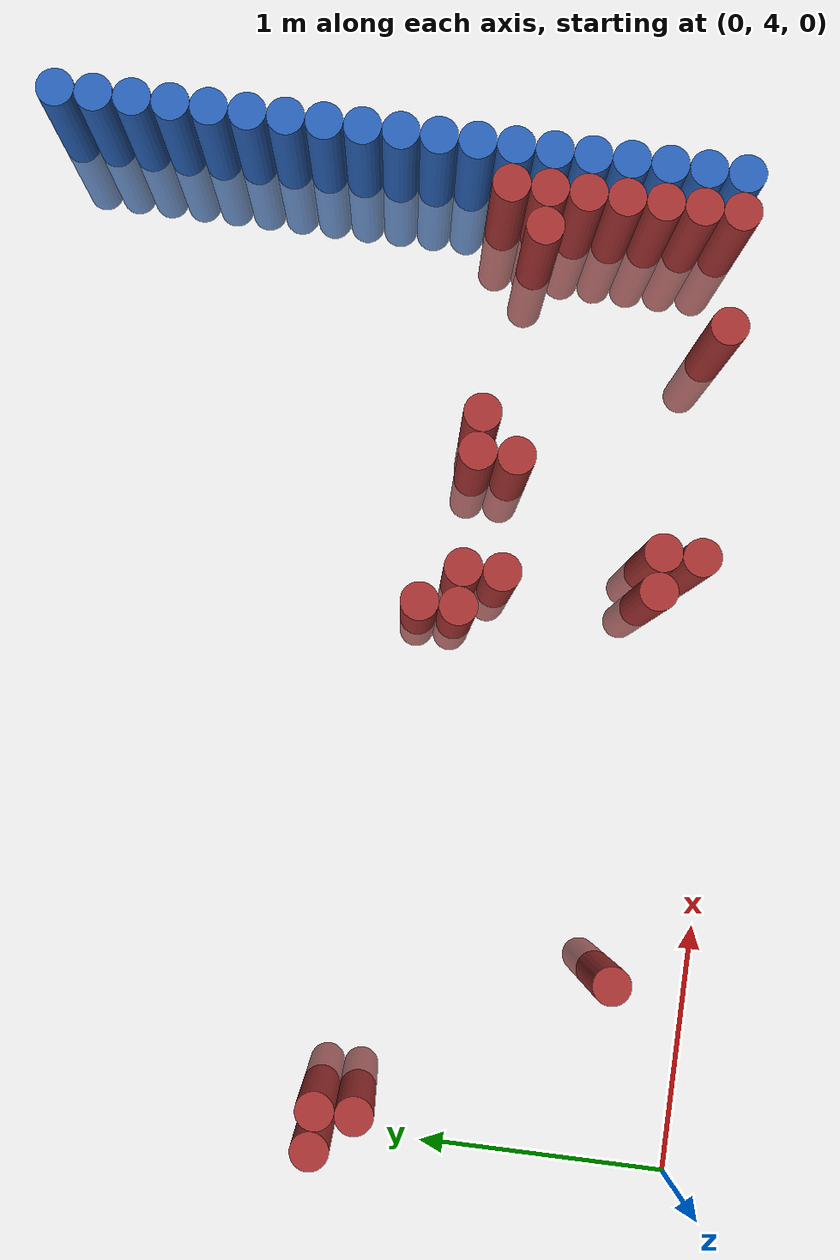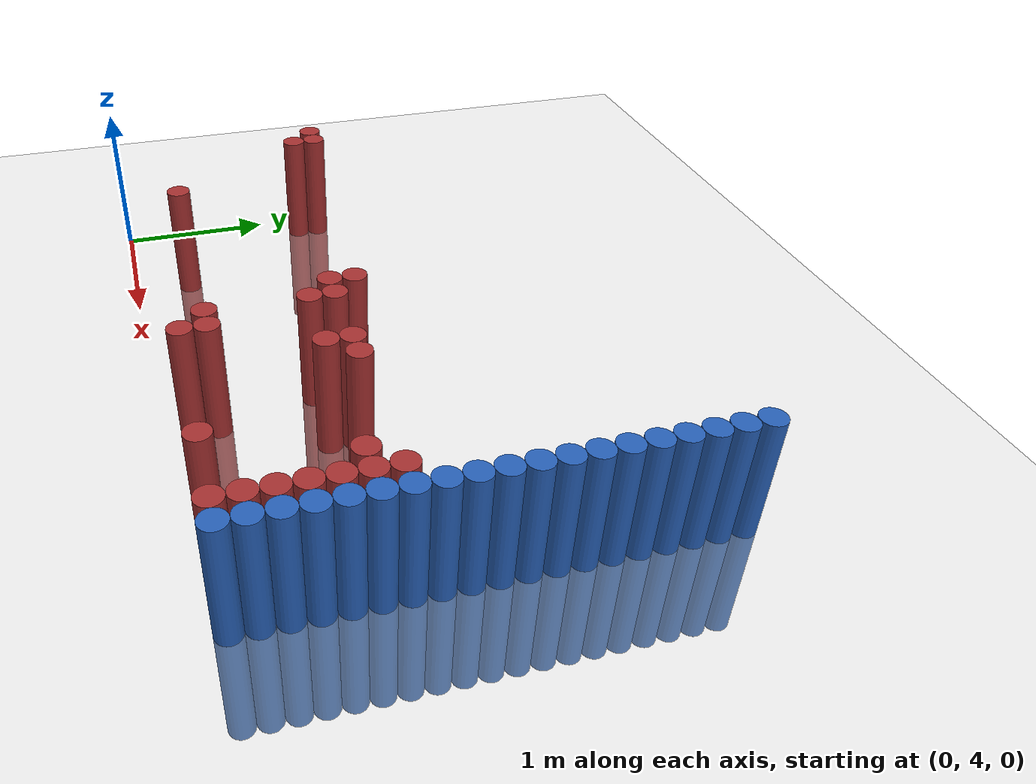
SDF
<sdf version="1.6">
 <world name="default">
  <model name="ground_plane">
   <static>1</static>
   <link name="link">
    <collision name="collision">
     <geometry><plane><normal>0 0 1</normal><size>100 100</size></plane></geometry>
     <surface><friction><ode><mu>100</mu><mu2>50</mu2></ode></friction></surface>
    </collision>
    <visual name="visual">
     <cast_shadows>0</cast_shadows>
     <geometry><plane><normal>0 0 1</normal><size>100 100</size></plane></geometry>
     <material>
      <script><uri>file://media/materials/scripts/gazebo.material</uri><name>Gazebo/Grey</name></script>
     </material>
    </visual>
   </link>
  </model>
  <model name="unit_cylinder_170">
   <static>1</static>
   <pose>3.925000 4.225000 0.000000 0.000000 0.000000 0.000000</pose>
   <link name="link">
    <inertial>
     <mass>1</mass>
     <inertia><ixx>0.145833</ixx><ixy>0</ixy><ixz>0</ixz><iyy>0.145833</iyy><iyz>0</iyz><izz>0.125</izz></inertia>
    </inertial>
    <collision name="collision">
     <geometry><cylinder><radius>0.075000</radius><length>1.5</length></cylinder></geometry>
    </collision>
    <visual name="visual">
     <geometry><cylinder><radius>0.075000</radius><length>1.5</length></cylinder></geometry>
     <material>
      <ambient>0.152000 0.379000 0.720000 1</ambient>
      <diffuse>0.152000 0.379000 0.720000 1</diffuse>
     </material>
     <material>
      <script><name>Gazebo/Grey</name><uri>file://media/materials/scripts/gazebo.material</uri></script>
     </material>
    </visual>
   </link>
  </model>
  <model name="unit_cylinder_172">
   <static>1</static>
   <pose>3.925000 4.375000 0.000000 0.000000 0.000000 0.000000</pose>
   <link name="link">
    <inertial>
     <mass>1</mass>
     <inertia><ixx>0.145833</ixx><ixy>0</ixy><ixz>0</ixz><iyy>0.145833</iyy><iyz>0</iyz><izz>0.125</izz></inertia>
    </inertial>
    <collision name="collision">
     <geometry><cylinder><radius>0.075000</radius><length>1.5</length></cylinder></geometry>
    </collision>
    <visual name="visual">
     <geometry><cylinder><radius>0.075000</radius><length>1.5</length></cylinder></geometry>
     <material>
      <ambient>0.152000 0.379000 0.720000 1</ambient>
      <diffuse>0.152000 0.379000 0.720000 1</diffuse>
     </material>
     <material>
      <script><name>Gazebo/Grey</name><uri>file://media/materials/scripts/gazebo.material</uri></script>
     </material>
    </visual>
   </link>
  </model>
  <model name="unit_cylinder_174">
   <static>1</static>
   <pose>3.925000 4.525000 0.000000 0.000000 0.000000 0.000000</pose>
   <link name="link">
    <inertial>
     <mass>1</mass>
     <inertia><ixx>0.145833</ixx><ixy>0</ixy><ixz>0</ixz><iyy>0.145833</iyy><iyz>0</iyz><izz>0.125</izz></inertia>
    </inertial>
    <collision name="collision">
     <geometry><cylinder><radius>0.075000</radius><length>1.5</length></cylinder></geometry>
    </collision>
    <visual name="visual">
     <geometry><cylinder><radius>0.075000</radius><length>1.5</length></cylinder></geometry>
     <material>
      <ambient>0.152000 0.379000 0.720000 1</ambient>
      <diffuse>0.152000 0.379000 0.720000 1</diffuse>
     </material>
     <material>
      <script><name>Gazebo/Grey</name><uri>file://media/materials/scripts/gazebo.material</uri></script>
     </material>
    </visual>
   </link>
  </model>
  <model name="unit_cylinder_176">
   <static>1</static>
   <pose>3.925000 4.675000 0.000000 0.000000 0.000000 0.000000</pose>
   <link name="link">
    <inertial>
     <mass>1</mass>
     <inertia><ixx>0.145833</ixx><ixy>0</ixy><ixz>0</ixz><iyy>0.145833</iyy><iyz>0</iyz><izz>0.125</izz></inertia>
    </inertial>
    <collision name="collision">
     <geometry><cylinder><radius>0.075000</radius><length>1.5</length></cylinder></geometry>
    </collision>
    <visual name="visual">
     <geometry><cylinder><radius>0.075000</radius><length>1.5</length></cylinder></geometry>
     <material>
      <ambient>0.152000 0.379000 0.720000 1</ambient>
      <diffuse>0.152000 0.379000 0.720000 1</diffuse>
     </material>
     <material>
      <script><name>Gazebo/Grey</name><uri>file://media/materials/scripts/gazebo.material</uri></script>
     </material>
    </visual>
   </link>
  </model>
  <model name="unit_cylinder_178">
   <static>1</static>
   <pose>3.925000 4.825000 0.000000 0.000000 0.000000 0.000000</pose>
   <link name="link">
    <inertial>
     <mass>1</mass>
     <inertia><ixx>0.145833</ixx><ixy>0</ixy><ixz>0</ixz><iyy>0.145833</iyy><iyz>0</iyz><izz>0.125</izz></inertia>
    </inertial>
    <collision name="collision">
     <geometry><cylinder><radius>0.075000</radius><length>1.5</length></cylinder></geometry>
    </collision>
    <visual name="visual">
     <geometry><cylinder><radius>0.075000</radius><length>1.5</length></cylinder></geometry>
     <material>
      <ambient>0.152000 0.379000 0.720000 1</ambient>
      <diffuse>0.152000 0.379000 0.720000 1</diffuse>
     </material>
     <material>
      <script><name>Gazebo/Grey</name><uri>file://media/materials/scripts/gazebo.material</uri></script>
     </material>
    </visual>
   </link>
  </model>
  <model name="unit_cylinder_180">
   <static>1</static>
   <pose>3.925000 4.975000 0.000000 0.000000 0.000000 0.000000</pose>
   <link name="link">
    <inertial>
     <mass>1</mass>
     <inertia><ixx>0.145833</ixx><ixy>0</ixy><ixz>0</ixz><iyy>0.145833</iyy><iyz>0</iyz><izz>0.125</izz></inertia>
    </inertial>
    <collision name="collision">
     <geometry><cylinder><radius>0.075000</radius><length>1.5</length></cylinder></geometry>
    </collision>
    <visual name="visual">
     <geometry><cylinder><radius>0.075000</radius><length>1.5</length></cylinder></geometry>
     <material>
      <ambient>0.152000 0.379000 0.720000 1</ambient>
      <diffuse>0.152000 0.379000 0.720000 1</diffuse>
     </material>
     <material>
      <script><name>Gazebo/Grey</name><uri>file://media/materials/scripts/gazebo.material</uri></script>
     </material>
    </visual>
   </link>
  </model>
  <model name="unit_cylinder_182">
   <static>1</static>
   <pose>3.925000 5.125000 0.000000 0.000000 0.000000 0.000000</pose>
   <link name="link">
    <inertial>
     <mass>1</mass>
     <inertia><ixx>0.145833</ixx><ixy>0</ixy><ixz>0</ixz><iyy>0.145833</iyy><iyz>0</iyz><izz>0.125</izz></inertia>
    </inertial>
    <collision name="collision">
     <geometry><cylinder><radius>0.075000</radius><length>1.5</length></cylinder></geometry>
    </collision>
    <visual name="visual">
     <geometry><cylinder><radius>0.075000</radius><length>1.5</length></cylinder></geometry>
     <material>
      <ambient>0.152000 0.379000 0.720000 1</ambient>
      <diffuse>0.152000 0.379000 0.720000 1</diffuse>
     </material>
     <material>
      <script><name>Gazebo/Grey</name><uri>file://media/materials/scripts/gazebo.material</uri></script>
     </material>
    </visual>
   </link>
  </model>
  <model name="unit_cylinder_184">
   <static>1</static>
   <pose>3.925000 5.275000 0.000000 0.000000 0.000000 0.000000</pose>
   <link name="link">
    <inertial>
     <mass>1</mass>
     <inertia><ixx>0.145833</ixx><ixy>0</ixy><ixz>0</ixz><iyy>0.145833</iyy><iyz>0</iyz><izz>0.125</izz></inertia>
    </inertial>
    <collision name="collision">
     <geometry><cylinder><radius>0.075000</radius><length>1.5</length></cylinder></geometry>
    </collision>
    <visual name="visual">
     <geometry><cylinder><radius>0.075000</radius><length>1.5</length></cylinder></geometry>
     <material>
      <ambient>0.152000 0.379000 0.720000 1</ambient>
      <diffuse>0.152000 0.379000 0.720000 1</diffuse>
     </material>
     <material>
      <script><name>Gazebo/Grey</name><uri>file://media/materials/scripts/gazebo.material</uri></script>
     </material>
    </visual>
   </link>
  </model>
  <model name="unit_cylinder_186">
   <static>1</static>
   <pose>3.925000 5.425000 0.000000 0.000000 0.000000 0.000000</pose>
   <link name="link">
    <inertial>
     <mass>1</mass>
     <inertia><ixx>0.145833</ixx><ixy>0</ixy><ixz>0</ixz><iyy>0.145833</iyy><iyz>0</iyz><izz>0.125</izz></inertia>
    </inertial>
    <collision name="collision">
     <geometry><cylinder><radius>0.075000</radius><length>1.5</length></cylinder></geometry>
    </collision>
    <visual name="visual">
     <geometry><cylinder><radius>0.075000</radius><length>1.5</length></cylinder></geometry>
     <material>
      <ambient>0.152000 0.379000 0.720000 1</ambient>
      <diffuse>0.152000 0.379000 0.720000 1</diffuse>
     </material>
     <material>
      <script><name>Gazebo/Grey</name><uri>file://media/materials/scripts/gazebo.material</uri></script>
     </material>
    </visual>
   </link>
  </model>
  <model name="unit_cylinder_188">
   <static>1</static>
   <pose>3.925000 5.575000 0.000000 0.000000 0.000000 0.000000</pose>
   <link name="link">
    <inertial>
     <mass>1</mass>
     <inertia><ixx>0.145833</ixx><ixy>0</ixy><ixz>0</ixz><iyy>0.145833</iyy><iyz>0</iyz><izz>0.125</izz></inertia>
    </inertial>
    <collision name="collision">
     <geometry><cylinder><radius>0.075000</radius><length>1.5</length></cylinder></geometry>
    </collision>
    <visual name="visual">
     <geometry><cylinder><radius>0.075000</radius><length>1.5</length></cylinder></geometry>
     <material>
      <ambient>0.152000 0.379000 0.720000 1</ambient>
      <diffuse>0.152000 0.379000 0.720000 1</diffuse>
     </material>
     <material>
      <script><name>Gazebo/Grey</name><uri>file://media/materials/scripts/gazebo.material</uri></script>
     </material>
    </visual>
   </link>
  </model>
  <model name="unit_cylinder_190">
   <static>1</static>
   <pose>3.925000 5.725000 0.000000 0.000000 0.000000 0.000000</pose>
   <link name="link">
    <inertial>
     <mass>1</mass>
     <inertia><ixx>0.145833</ixx><ixy>0</ixy><ixz>0</ixz><iyy>0.145833</iyy><iyz>0</iyz><izz>0.125</izz></inertia>
    </inertial>
    <collision name="collision">
     <geometry><cylinder><radius>0.075000</radius><length>1.5</length></cylinder></geometry>
    </collision>
    <visual name="visual">
     <geometry><cylinder><radius>0.075000</radius><length>1.5</length></cylinder></geometry>
     <material>
      <ambient>0.152000 0.379000 0.720000 1</ambient>
      <diffuse>0.152000 0.379000 0.720000 1</diffuse>
     </material>
     <material>
      <script><name>Gazebo/Grey</name><uri>file://media/materials/scripts/gazebo.material</uri></script>
     </material>
    </visual>
   </link>
  </model>
  <model name="unit_cylinder_192">
   <static>1</static>
   <pose>3.925000 5.875000 0.000000 0.000000 0.000000 0.000000</pose>
   <link name="link">
    <inertial>
     <mass>1</mass>
     <inertia><ixx>0.145833</ixx><ixy>0</ixy><ixz>0</ixz><iyy>0.145833</iyy><iyz>0</iyz><izz>0.125</izz></inertia>
    </inertial>
    <collision name="collision">
     <geometry><cylinder><radius>0.075000</radius><length>1.5</length></cylinder></geometry>
    </collision>
    <visual name="visual">
     <geometry><cylinder><radius>0.075000</radius><length>1.5</length></cylinder></geometry>
     <material>
      <ambient>0.152000 0.379000 0.720000 1</ambient>
      <diffuse>0.152000 0.379000 0.720000 1</diffuse>
     </material>
     <material>
      <script><name>Gazebo/Grey</name><uri>file://media/materials/scripts/gazebo.material</uri></script>
     </material>
    </visual>
   </link>
  </model>
  <model name="unit_cylinder_194">
   <static>1</static>
   <pose>3.925000 6.025000 0.000000 0.000000 0.000000 0.000000</pose>
   <link name="link">
    <inertial>
     <mass>1</mass>
     <inertia><ixx>0.145833</ixx><ixy>0</ixy><ixz>0</ixz><iyy>0.145833</iyy><iyz>0</iyz><izz>0.125</izz></inertia>
    </inertial>
    <collision name="collision">
     <geometry><cylinder><radius>0.075000</radius><length>1.5</length></cylinder></geometry>
    </collision>
    <visual name="visual">
     <geometry><cylinder><radius>0.075000</radius><length>1.5</length></cylinder></geometry>
     <material>
      <ambient>0.152000 0.379000 0.720000 1</ambient>
      <diffuse>0.152000 0.379000 0.720000 1</diffuse>
     </material>
     <material>
      <script><name>Gazebo/Grey</name><uri>file://media/materials/scripts/gazebo.material</uri></script>
     </material>
    </visual>
   </link>
  </model>
  <model name="unit_cylinder_196">
   <static>1</static>
   <pose>3.925000 6.175000 0.000000 0.000000 0.000000 0.000000</pose>
   <link name="link">
    <inertial>
     <mass>1</mass>
     <inertia><ixx>0.145833</ixx><ixy>0</ixy><ixz>0</ixz><iyy>0.145833</iyy><iyz>0</iyz><izz>0.125</izz></inertia>
    </inertial>
    <collision name="collision">
     <geometry><cylinder><radius>0.075000</radius><length>1.5</length></cylinder></geometry>
    </collision>
    <visual name="visual">
     <geometry><cylinder><radius>0.075000</radius><length>1.5</length></cylinder></geometry>
     <material>
      <ambient>0.152000 0.379000 0.720000 1</ambient>
      <diffuse>0.152000 0.379000 0.720000 1</diffuse>
     </material>
     <material>
      <script><name>Gazebo/Grey</name><uri>file://media/materials/scripts/gazebo.material</uri></script>
     </material>
    </visual>
   </link>
  </model>
  <model name="unit_cylinder_198">
   <static>1</static>
   <pose>3.925000 6.325000 0.000000 0.000000 0.000000 0.000000</pose>
   <link name="link">
    <inertial>
     <mass>1</mass>
     <inertia><ixx>0.145833</ixx><ixy>0</ixy><ixz>0</ixz><iyy>0.145833</iyy><iyz>0</iyz><izz>0.125</izz></inertia>
    </inertial>
    <collision name="collision">
     <geometry><cylinder><radius>0.075000</radius><length>1.5</length></cylinder></geometry>
    </collision>
    <visual name="visual">
     <geometry><cylinder><radius>0.075000</radius><length>1.5</length></cylinder></geometry>
     <material>
      <ambient>0.152000 0.379000 0.720000 1</ambient>
      <diffuse>0.152000 0.379000 0.720000 1</diffuse>
     </material>
     <material>
      <script><name>Gazebo/Grey</name><uri>file://media/materials/scripts/gazebo.material</uri></script>
     </material>
    </visual>
   </link>
  </model>
  <model name="unit_cylinder_200">
   <static>1</static>
   <pose>3.925000 6.475000 0.000000 0.000000 0.000000 0.000000</pose>
   <link name="link">
    <inertial>
     <mass>1</mass>
     <inertia><ixx>0.145833</ixx><ixy>0</ixy><ixz>0</ixz><iyy>0.145833</iyy><iyz>0</iyz><izz>0.125</izz></inertia>
    </inertial>
    <collision name="collision">
     <geometry><cylinder><radius>0.075000</radius><length>1.5</length></cylinder></geometry>
    </collision>
    <visual name="visual">
     <geometry><cylinder><radius>0.075000</radius><length>1.5</length></cylinder></geometry>
     <material>
      <ambient>0.152000 0.379000 0.720000 1</ambient>
      <diffuse>0.152000 0.379000 0.720000 1</diffuse>
     </material>
     <material>
      <script><name>Gazebo/Grey</name><uri>file://media/materials/scripts/gazebo.material</uri></script>
     </material>
    </visual>
   </link>
  </model>
  <model name="unit_cylinder_202">
   <static>1</static>
   <pose>3.925000 6.625000 0.000000 0.000000 0.000000 0.000000</pose>
   <link name="link">
    <inertial>
     <mass>1</mass>
     <inertia><ixx>0.145833</ixx><ixy>0</ixy><ixz>0</ixz><iyy>0.145833</iyy><iyz>0</iyz><izz>0.125</izz></inertia>
    </inertial>
    <collision name="collision">
     <geometry><cylinder><radius>0.075000</radius><length>1.5</length></cylinder></geometry>
    </collision>
    <visual name="visual">
     <geometry><cylinder><radius>0.075000</radius><length>1.5</length></cylinder></geometry>
     <material>
      <ambient>0.152000 0.379000 0.720000 1</ambient>
      <diffuse>0.152000 0.379000 0.720000 1</diffuse>
     </material>
     <material>
      <script><name>Gazebo/Grey</name><uri>file://media/materials/scripts/gazebo.material</uri></script>
     </material>
    </visual>
   </link>
  </model>
  <model name="unit_cylinder_204">
   <static>1</static>
   <pose>3.925000 6.775000 0.000000 0.000000 0.000000 0.000000</pose>
   <link name="link">
    <inertial>
     <mass>1</mass>
     <inertia><ixx>0.145833</ixx><ixy>0</ixy><ixz>0</ixz><iyy>0.145833</iyy><iyz>0</iyz><izz>0.125</izz></inertia>
    </inertial>
    <collision name="collision">
     <geometry><cylinder><radius>0.075000</radius><length>1.5</length></cylinder></geometry>
    </collision>
    <visual name="visual">
     <geometry><cylinder><radius>0.075000</radius><length>1.5</length></cylinder></geometry>
     <material>
      <ambient>0.152000 0.379000 0.720000 1</ambient>
      <diffuse>0.152000 0.379000 0.720000 1</diffuse>
     </material>
     <material>
      <script><name>Gazebo/Grey</name><uri>file://media/materials/scripts/gazebo.material</uri></script>
     </material>
    </visual>
   </link>
  </model>
  <model name="unit_cylinder_206">
   <static>1</static>
   <pose>3.925000 6.925000 0.000000 0.000000 0.000000 0.000000</pose>
   <link name="link">
    <inertial>
     <mass>1</mass>
     <inertia><ixx>0.145833</ixx><ixy>0</ixy><ixz>0</ixz><iyy>0.145833</iyy><iyz>0</iyz><izz>0.125</izz></inertia>
    </inertial>
    <collision name="collision">
     <geometry><cylinder><radius>0.075000</radius><length>1.5</length></cylinder></geometry>
    </collision>
    <visual name="visual">
     <geometry><cylinder><radius>0.075000</radius><length>1.5</length></cylinder></geometry>
     <material>
      <ambient>0.152000 0.379000 0.720000 1</ambient>
      <diffuse>0.152000 0.379000 0.720000 1</diffuse>
     </material>
     <material>
      <script><name>Gazebo/Grey</name><uri>file://media/materials/scripts/gazebo.material</uri></script>
     </material>
    </visual>
   </link>
  </model>
  <model name="unit_cylinder_409">
   <static>1</static>
   <pose>0.025000 5.425000 0.000000 0.000000 0.000000 0.000000</pose>
   <link name="link">
    <inertial>
     <mass>1</mass>
     <inertia><ixx>0.145833</ixx><ixy>0</ixy><ixz>0</ixz><iyy>0.145833</iyy><iyz>0</iyz><izz>0.125</izz></inertia>
    </inertial>
    <collision name="collision">
     <geometry><cylinder><radius>0.075000</radius><length>1.5</length></cylinder></geometry>
    </collision>
    <visual name="visual">
     <geometry><cylinder><radius>0.075000</radius><length>1.5</length></cylinder></geometry>
     <material>
      <ambient>0.648000 0.192000 0.192000 1</ambient>
      <diffuse>0.648000 0.192000 0.192000 1</diffuse>
     </material>
     <material>
      <script><name>Gazebo/Grey</name><uri>file://media/materials/scripts/gazebo.material</uri></script>
     </material>
    </visual>
   </link>
  </model>
  <model name="unit_cylinder_418">
   <static>1</static>
   <pose>0.175000 5.275000 0.000000 0.000000 0.000000 0.000000</pose>
   <link name="link">
    <inertial>
     <mass>1</mass>
     <inertia><ixx>0.145833</ixx><ixy>0</ixy><ixz>0</ixz><iyy>0.145833</iyy><iyz>0</iyz><izz>0.125</izz></inertia>
    </inertial>
    <collision name="collision">
     <geometry><cylinder><radius>0.075000</radius><length>1.5</length></cylinder></geometry>
    </collision>
    <visual name="visual">
     <geometry><cylinder><radius>0.075000</radius><length>1.5</length></cylinder></geometry>
     <material>
      <ambient>0.648000 0.192000 0.192000 1</ambient>
      <diffuse>0.648000 0.192000 0.192000 1</diffuse>
     </material>
     <material>
      <script><name>Gazebo/Grey</name><uri>file://media/materials/scripts/gazebo.material</uri></script>
     </material>
    </visual>
   </link>
  </model>
  <model name="unit_cylinder_419">
   <static>1</static>
   <pose>0.175000 5.425000 0.000000 0.000000 0.000000 0.000000</pose>
   <link name="link">
    <inertial>
     <mass>1</mass>
     <inertia><ixx>0.145833</ixx><ixy>0</ixy><ixz>0</ixz><iyy>0.145833</iyy><iyz>0</iyz><izz>0.125</izz></inertia>
    </inertial>
    <collision name="collision">
     <geometry><cylinder><radius>0.075000</radius><length>1.5</length></cylinder></geometry>
    </collision>
    <visual name="visual">
     <geometry><cylinder><radius>0.075000</radius><length>1.5</length></cylinder></geometry>
     <material>
      <ambient>0.648000 0.192000 0.192000 1</ambient>
      <diffuse>0.648000 0.192000 0.192000 1</diffuse>
     </material>
     <material>
      <script><name>Gazebo/Grey</name><uri>file://media/materials/scripts/gazebo.material</uri></script>
     </material>
    </visual>
   </link>
  </model>
  <model name="unit_cylinder_437">
   <static>1</static>
   <pose>0.775000 4.375000 0.000000 0.000000 0.000000 0.000000</pose>
   <link name="link">
    <inertial>
     <mass>1</mass>
     <inertia><ixx>0.145833</ixx><ixy>0</ixy><ixz>0</ixz><iyy>0.145833</iyy><iyz>0</iyz><izz>0.125</izz></inertia>
    </inertial>
    <collision name="collision">
     <geometry><cylinder><radius>0.075000</radius><length>1.5</length></cylinder></geometry>
    </collision>
    <visual name="visual">
     <geometry><cylinder><radius>0.075000</radius><length>1.5</length></cylinder></geometry>
     <material>
      <ambient>0.648000 0.192000 0.192000 1</ambient>
      <diffuse>0.648000 0.192000 0.192000 1</diffuse>
     </material>
     <material>
      <script><name>Gazebo/Grey</name><uri>file://media/materials/scripts/gazebo.material</uri></script>
     </material>
    </visual>
   </link>
  </model>
  <model name="unit_cylinder_486">
   <static>1</static>
   <pose>2.125000 5.125000 0.000000 0.000000 0.000000 0.000000</pose>
   <link name="link">
    <inertial>
     <mass>1</mass>
     <inertia><ixx>0.145833</ixx><ixy>0</ixy><ixz>0</ixz><iyy>0.145833</iyy><iyz>0</iyz><izz>0.125</izz></inertia>
    </inertial>
    <collision name="collision">
     <geometry><cylinder><radius>0.075000</radius><length>1.5</length></cylinder></geometry>
    </collision>
    <visual name="visual">
     <geometry><cylinder><radius>0.075000</radius><length>1.5</length></cylinder></geometry>
     <material>
      <ambient>0.648000 0.192000 0.192000 1</ambient>
      <diffuse>0.648000 0.192000 0.192000 1</diffuse>
     </material>
     <material>
      <script><name>Gazebo/Grey</name><uri>file://media/materials/scripts/gazebo.material</uri></script>
     </material>
    </visual>
   </link>
  </model>
  <model name="unit_cylinder_487">
   <static>1</static>
   <pose>2.125000 5.275000 0.000000 0.000000 0.000000 0.000000</pose>
   <link name="link">
    <inertial>
     <mass>1</mass>
     <inertia><ixx>0.145833</ixx><ixy>0</ixy><ixz>0</ixz><iyy>0.145833</iyy><iyz>0</iyz><izz>0.125</izz></inertia>
    </inertial>
    <collision name="collision">
     <geometry><cylinder><radius>0.075000</radius><length>1.5</length></cylinder></geometry>
    </collision>
    <visual name="visual">
     <geometry><cylinder><radius>0.075000</radius><length>1.5</length></cylinder></geometry>
     <material>
      <ambient>0.648000 0.192000 0.192000 1</ambient>
      <diffuse>0.648000 0.192000 0.192000 1</diffuse>
     </material>
     <material>
      <script><name>Gazebo/Grey</name><uri>file://media/materials/scripts/gazebo.material</uri></script>
     </material>
    </visual>
   </link>
  </model>
  <model name="unit_cylinder_493">
   <static>1</static>
   <pose>2.275000 4.375000 0.000000 0.000000 0.000000 0.000000</pose>
   <link name="link">
    <inertial>
     <mass>1</mass>
     <inertia><ixx>0.145833</ixx><ixy>0</ixy><ixz>0</ixz><iyy>0.145833</iyy><iyz>0</iyz><izz>0.125</izz></inertia>
    </inertial>
    <collision name="collision">
     <geometry><cylinder><radius>0.075000</radius><length>1.5</length></cylinder></geometry>
    </collision>
    <visual name="visual">
     <geometry><cylinder><radius>0.075000</radius><length>1.5</length></cylinder></geometry>
     <material>
      <ambient>0.648000 0.192000 0.192000 1</ambient>
      <diffuse>0.648000 0.192000 0.192000 1</diffuse>
     </material>
     <material>
      <script><name>Gazebo/Grey</name><uri>file://media/materials/scripts/gazebo.material</uri></script>
     </material>
    </visual>
   </link>
  </model>
  <model name="unit_cylinder_494">
   <static>1</static>
   <pose>2.275000 4.975000 0.000000 0.000000 0.000000 0.000000</pose>
   <link name="link">
    <inertial>
     <mass>1</mass>
     <inertia><ixx>0.145833</ixx><ixy>0</ixy><ixz>0</ixz><iyy>0.145833</iyy><iyz>0</iyz><izz>0.125</izz></inertia>
    </inertial>
    <collision name="collision">
     <geometry><cylinder><radius>0.075000</radius><length>1.5</length></cylinder></geometry>
    </collision>
    <visual name="visual">
     <geometry><cylinder><radius>0.075000</radius><length>1.5</length></cylinder></geometry>
     <material>
      <ambient>0.648000 0.192000 0.192000 1</ambient>
      <diffuse>0.648000 0.192000 0.192000 1</diffuse>
     </material>
     <material>
      <script><name>Gazebo/Grey</name><uri>file://media/materials/scripts/gazebo.material</uri></script>
     </material>
    </visual>
   </link>
  </model>
  <model name="unit_cylinder_495">
   <static>1</static>
   <pose>2.275000 5.125000 0.000000 0.000000 0.000000 0.000000</pose>
   <link name="link">
    <inertial>
     <mass>1</mass>
     <inertia><ixx>0.145833</ixx><ixy>0</ixy><ixz>0</ixz><iyy>0.145833</iyy><iyz>0</iyz><izz>0.125</izz></inertia>
    </inertial>
    <collision name="collision">
     <geometry><cylinder><radius>0.075000</radius><length>1.5</length></cylinder></geometry>
    </collision>
    <visual name="visual">
     <geometry><cylinder><radius>0.075000</radius><length>1.5</length></cylinder></geometry>
     <material>
      <ambient>0.648000 0.192000 0.192000 1</ambient>
      <diffuse>0.648000 0.192000 0.192000 1</diffuse>
     </material>
     <material>
      <script><name>Gazebo/Grey</name><uri>file://media/materials/scripts/gazebo.material</uri></script>
     </material>
    </visual>
   </link>
  </model>
  <model name="unit_cylinder_503">
   <static>1</static>
   <pose>2.425000 4.225000 0.000000 0.000000 0.000000 0.000000</pose>
   <link name="link">
    <inertial>
     <mass>1</mass>
     <inertia><ixx>0.145833</ixx><ixy>0</ixy><ixz>0</ixz><iyy>0.145833</iyy><iyz>0</iyz><izz>0.125</izz></inertia>
    </inertial>
    <collision name="collision">
     <geometry><cylinder><radius>0.075000</radius><length>1.5</length></cylinder></geometry>
    </collision>
    <visual name="visual">
     <geometry><cylinder><radius>0.075000</radius><length>1.5</length></cylinder></geometry>
     <material>
      <ambient>0.648000 0.192000 0.192000 1</ambient>
      <diffuse>0.648000 0.192000 0.192000 1</diffuse>
     </material>
     <material>
      <script><name>Gazebo/Grey</name><uri>file://media/materials/scripts/gazebo.material</uri></script>
     </material>
    </visual>
   </link>
  </model>
  <model name="unit_cylinder_504">
   <static>1</static>
   <pose>2.425000 4.375000 0.000000 0.000000 0.000000 0.000000</pose>
   <link name="link">
    <inertial>
     <mass>1</mass>
     <inertia><ixx>0.145833</ixx><ixy>0</ixy><ixz>0</ixz><iyy>0.145833</iyy><iyz>0</iyz><izz>0.125</izz></inertia>
    </inertial>
    <collision name="collision">
     <geometry><cylinder><radius>0.075000</radius><length>1.5</length></cylinder></geometry>
    </collision>
    <visual name="visual">
     <geometry><cylinder><radius>0.075000</radius><length>1.5</length></cylinder></geometry>
     <material>
      <ambient>0.648000 0.192000 0.192000 1</ambient>
      <diffuse>0.648000 0.192000 0.192000 1</diffuse>
     </material>
     <material>
      <script><name>Gazebo/Grey</name><uri>file://media/materials/scripts/gazebo.material</uri></script>
     </material>
    </visual>
   </link>
  </model>
  <model name="unit_cylinder_521">
   <static>1</static>
   <pose>2.725000 4.975000 0.000000 0.000000 0.000000 0.000000</pose>
   <link name="link">
    <inertial>
     <mass>1</mass>
     <inertia><ixx>0.145833</ixx><ixy>0</ixy><ixz>0</ixz><iyy>0.145833</iyy><iyz>0</iyz><izz>0.125</izz></inertia>
    </inertial>
    <collision name="collision">
     <geometry><cylinder><radius>0.075000</radius><length>1.5</length></cylinder></geometry>
    </collision>
    <visual name="visual">
     <geometry><cylinder><radius>0.075000</radius><length>1.5</length></cylinder></geometry>
     <material>
      <ambient>0.648000 0.192000 0.192000 1</ambient>
      <diffuse>0.648000 0.192000 0.192000 1</diffuse>
     </material>
     <material>
      <script><name>Gazebo/Grey</name><uri>file://media/materials/scripts/gazebo.material</uri></script>
     </material>
    </visual>
   </link>
  </model>
  <model name="unit_cylinder_522">
   <static>1</static>
   <pose>2.725000 5.125000 0.000000 0.000000 0.000000 0.000000</pose>
   <link name="link">
    <inertial>
     <mass>1</mass>
     <inertia><ixx>0.145833</ixx><ixy>0</ixy><ixz>0</ixz><iyy>0.145833</iyy><iyz>0</iyz><izz>0.125</izz></inertia>
    </inertial>
    <collision name="collision">
     <geometry><cylinder><radius>0.075000</radius><length>1.5</length></cylinder></geometry>
    </collision>
    <visual name="visual">
     <geometry><cylinder><radius>0.075000</radius><length>1.5</length></cylinder></geometry>
     <material>
      <ambient>0.648000 0.192000 0.192000 1</ambient>
      <diffuse>0.648000 0.192000 0.192000 1</diffuse>
     </material>
     <material>
      <script><name>Gazebo/Grey</name><uri>file://media/materials/scripts/gazebo.material</uri></script>
     </material>
    </visual>
   </link>
  </model>
  <model name="unit_cylinder_529">
   <static>1</static>
   <pose>2.875000 5.125000 0.000000 0.000000 0.000000 0.000000</pose>
   <link name="link">
    <inertial>
     <mass>1</mass>
     <inertia><ixx>0.145833</ixx><ixy>0</ixy><ixz>0</ixz><iyy>0.145833</iyy><iyz>0</iyz><izz>0.125</izz></inertia>
    </inertial>
    <collision name="collision">
     <geometry><cylinder><radius>0.075000</radius><length>1.5</length></cylinder></geometry>
    </collision>
    <visual name="visual">
     <geometry><cylinder><radius>0.075000</radius><length>1.5</length></cylinder></geometry>
     <material>
      <ambient>0.648000 0.192000 0.192000 1</ambient>
      <diffuse>0.648000 0.192000 0.192000 1</diffuse>
     </material>
     <material>
      <script><name>Gazebo/Grey</name><uri>file://media/materials/scripts/gazebo.material</uri></script>
     </material>
    </visual>
   </link>
  </model>
  <model name="unit_cylinder_556">
   <static>1</static>
   <pose>3.325000 4.225000 0.000000 0.000000 0.000000 0.000000</pose>
   <link name="link">
    <inertial>
     <mass>1</mass>
     <inertia><ixx>0.145833</ixx><ixy>0</ixy><ixz>0</ixz><iyy>0.145833</iyy><iyz>0</iyz><izz>0.125</izz></inertia>
    </inertial>
    <collision name="collision">
     <geometry><cylinder><radius>0.075000</radius><length>1.5</length></cylinder></geometry>
    </collision>
    <visual name="visual">
     <geometry><cylinder><radius>0.075000</radius><length>1.5</length></cylinder></geometry>
     <material>
      <ambient>0.648000 0.192000 0.192000 1</ambient>
      <diffuse>0.648000 0.192000 0.192000 1</diffuse>
     </material>
     <material>
      <script><name>Gazebo/Grey</name><uri>file://media/materials/scripts/gazebo.material</uri></script>
     </material>
    </visual>
   </link>
  </model>
  <model name="unit_cylinder_577">
   <static>1</static>
   <pose>3.625000 4.975000 0.000000 0.000000 0.000000 0.000000</pose>
   <link name="link">
    <inertial>
     <mass>1</mass>
     <inertia><ixx>0.145833</ixx><ixy>0</ixy><ixz>0</ixz><iyy>0.145833</iyy><iyz>0</iyz><izz>0.125</izz></inertia>
    </inertial>
    <collision name="collision">
     <geometry><cylinder><radius>0.075000</radius><length>1.5</length></cylinder></geometry>
    </collision>
    <visual name="visual">
     <geometry><cylinder><radius>0.075000</radius><length>1.5</length></cylinder></geometry>
     <material>
      <ambient>0.648000 0.192000 0.192000 1</ambient>
      <diffuse>0.648000 0.192000 0.192000 1</diffuse>
     </material>
     <material>
      <script><name>Gazebo/Grey</name><uri>file://media/materials/scripts/gazebo.material</uri></script>
     </material>
    </visual>
   </link>
  </model>
  <model name="unit_cylinder_600">
   <static>1</static>
   <pose>3.775000 4.225000 0.000000 0.000000 0.000000 0.000000</pose>
   <link name="link">
    <inertial>
     <mass>1</mass>
     <inertia><ixx>0.145833</ixx><ixy>0</ixy><ixz>0</ixz><iyy>0.145833</iyy><iyz>0</iyz><izz>0.125</izz></inertia>
    </inertial>
    <collision name="collision">
     <geometry><cylinder><radius>0.075000</radius><length>1.5</length></cylinder></geometry>
    </collision>
    <visual name="visual">
     <geometry><cylinder><radius>0.075000</radius><length>1.5</length></cylinder></geometry>
     <material>
      <ambient>0.648000 0.192000 0.192000 1</ambient>
      <diffuse>0.648000 0.192000 0.192000 1</diffuse>
     </material>
     <material>
      <script><name>Gazebo/Grey</name><uri>file://media/materials/scripts/gazebo.material</uri></script>
     </material>
    </visual>
   </link>
  </model>
  <model name="unit_cylinder_601">
   <static>1</static>
   <pose>3.775000 4.375000 0.000000 0.000000 0.000000 0.000000</pose>
   <link name="link">
    <inertial>
     <mass>1</mass>
     <inertia><ixx>0.145833</ixx><ixy>0</ixy><ixz>0</ixz><iyy>0.145833</iyy><iyz>0</iyz><izz>0.125</izz></inertia>
    </inertial>
    <collision name="collision">
     <geometry><cylinder><radius>0.075000</radius><length>1.5</length></cylinder></geometry>
    </collision>
    <visual name="visual">
     <geometry><cylinder><radius>0.075000</radius><length>1.5</length></cylinder></geometry>
     <material>
      <ambient>0.648000 0.192000 0.192000 1</ambient>
      <diffuse>0.648000 0.192000 0.192000 1</diffuse>
     </material>
     <material>
      <script><name>Gazebo/Grey</name><uri>file://media/materials/scripts/gazebo.material</uri></script>
     </material>
    </visual>
   </link>
  </model>
  <model name="unit_cylinder_602">
   <static>1</static>
   <pose>3.775000 4.525000 0.000000 0.000000 0.000000 0.000000</pose>
   <link name="link">
    <inertial>
     <mass>1</mass>
     <inertia><ixx>0.145833</ixx><ixy>0</ixy><ixz>0</ixz><iyy>0.145833</iyy><iyz>0</iyz><izz>0.125</izz></inertia>
    </inertial>
    <collision name="collision">
     <geometry><cylinder><radius>0.075000</radius><length>1.5</length></cylinder></geometry>
    </collision>
    <visual name="visual">
     <geometry><cylinder><radius>0.075000</radius><length>1.5</length></cylinder></geometry>
     <material>
      <ambient>0.648000 0.192000 0.192000 1</ambient>
      <diffuse>0.648000 0.192000 0.192000 1</diffuse>
     </material>
     <material>
      <script><name>Gazebo/Grey</name><uri>file://media/materials/scripts/gazebo.material</uri></script>
     </material>
    </visual>
   </link>
  </model>
  <model name="unit_cylinder_603">
   <static>1</static>
   <pose>3.775000 4.675000 0.000000 0.000000 0.000000 0.000000</pose>
   <link name="link">
    <inertial>
     <mass>1</mass>
     <inertia><ixx>0.145833</ixx><ixy>0</ixy><ixz>0</ixz><iyy>0.145833</iyy><iyz>0</iyz><izz>0.125</izz></inertia>
    </inertial>
    <collision name="collision">
     <geometry><cylinder><radius>0.075000</radius><length>1.5</length></cylinder></geometry>
    </collision>
    <visual name="visual">
     <geometry><cylinder><radius>0.075000</radius><length>1.5</length></cylinder></geometry>
     <material>
      <ambient>0.648000 0.192000 0.192000 1</ambient>
      <diffuse>0.648000 0.192000 0.192000 1</diffuse>
     </material>
     <material>
      <script><name>Gazebo/Grey</name><uri>file://media/materials/scripts/gazebo.material</uri></script>
     </material>
    </visual>
   </link>
  </model>
  <model name="unit_cylinder_604">
   <static>1</static>
   <pose>3.775000 4.825000 0.000000 0.000000 0.000000 0.000000</pose>
   <link name="link">
    <inertial>
     <mass>1</mass>
     <inertia><ixx>0.145833</ixx><ixy>0</ixy><ixz>0</ixz><iyy>0.145833</iyy><iyz>0</iyz><izz>0.125</izz></inertia>
    </inertial>
    <collision name="collision">
     <geometry><cylinder><radius>0.075000</radius><length>1.5</length></cylinder></geometry>
    </collision>
    <visual name="visual">
     <geometry><cylinder><radius>0.075000</radius><length>1.5</length></cylinder></geometry>
     <material>
      <ambient>0.648000 0.192000 0.192000 1</ambient>
      <diffuse>0.648000 0.192000 0.192000 1</diffuse>
     </material>
     <material>
      <script><name>Gazebo/Grey</name><uri>file://media/materials/scripts/gazebo.material</uri></script>
     </material>
    </visual>
   </link>
  </model>
  <model name="unit_cylinder_605">
   <static>1</static>
   <pose>3.775000 4.975000 0.000000 0.000000 0.000000 0.000000</pose>
   <link name="link">
    <inertial>
     <mass>1</mass>
     <inertia><ixx>0.145833</ixx><ixy>0</ixy><ixz>0</ixz><iyy>0.145833</iyy><iyz>0</iyz><izz>0.125</izz></inertia>
    </inertial>
    <collision name="collision">
     <geometry><cylinder><radius>0.075000</radius><length>1.5</length></cylinder></geometry>
    </collision>
    <visual name="visual">
     <geometry><cylinder><radius>0.075000</radius><length>1.5</length></cylinder></geometry>
     <material>
      <ambient>0.648000 0.192000 0.192000 1</ambient>
      <diffuse>0.648000 0.192000 0.192000 1</diffuse>
     </material>
     <material>
      <script><name>Gazebo/Grey</name><uri>file://media/materials/scripts/gazebo.material</uri></script>
     </material>
    </visual>
   </link>
  </model>
  <model name="unit_cylinder_606">
   <static>1</static>
   <pose>3.775000 5.125000 0.000000 0.000000 0.000000 0.000000</pose>
   <link name="link">
    <inertial>
     <mass>1</mass>
     <inertia><ixx>0.145833</ixx><ixy>0</ixy><ixz>0</ixz><iyy>0.145833</iyy><iyz>0</iyz><izz>0.125</izz></inertia>
    </inertial>
    <collision name="collision">
     <geometry><cylinder><radius>0.075000</radius><length>1.5</length></cylinder></geometry>
    </collision>
    <visual name="visual">
     <geometry><cylinder><radius>0.075000</radius><length>1.5</length></cylinder></geometry>
     <material>
      <ambient>0.648000 0.192000 0.192000 1</ambient>
      <diffuse>0.648000 0.192000 0.192000 1</diffuse>
     </material>
     <material>
      <script><name>Gazebo/Grey</name><uri>file://media/materials/scripts/gazebo.material</uri></script>
     </material>
    </visual>
   </link>
  </model>
  <model name="unit_cylinder_648">
   <static>1</static>
   <pose>3.925000 4.225000 0.000000 0.000000 0.000000 0.000000</pose>
   <link name="link">
    <inertial>
     <mass>1</mass>
     <inertia><ixx>0.145833</ixx><ixy>0</ixy><ixz>0</ixz><iyy>0.145833</iyy><iyz>0</iyz><izz>0.125</izz></inertia>
    </inertial>
    <collision name="collision">
     <geometry><cylinder><radius>0.075000</radius><length>1.5</length></cylinder></geometry>
    </collision>
    <visual name="visual">
     <geometry><cylinder><radius>0.075000</radius><length>1.5</length></cylinder></geometry>
     <material>
      <ambient>0.152000 0.379000 0.720000 1</ambient>
      <diffuse>0.152000 0.379000 0.720000 1</diffuse>
     </material>
     <material>
      <script><name>Gazebo/Grey</name><uri>file://media/materials/scripts/gazebo.material</uri></script>
     </material>
    </visual>
   </link>
  </model>
  <model name="unit_cylinder_649">
   <static>1</static>
   <pose>3.925000 4.375000 0.000000 0.000000 0.000000 0.000000</pose>
   <link name="link">
    <inertial>
     <mass>1</mass>
     <inertia><ixx>0.145833</ixx><ixy>0</ixy><ixz>0</ixz><iyy>0.145833</iyy><iyz>0</iyz><izz>0.125</izz></inertia>
    </inertial>
    <collision name="collision">
     <geometry><cylinder><radius>0.075000</radius><length>1.5</length></cylinder></geometry>
    </collision>
    <visual name="visual">
     <geometry><cylinder><radius>0.075000</radius><length>1.5</length></cylinder></geometry>
     <material>
      <ambient>0.152000 0.379000 0.720000 1</ambient>
      <diffuse>0.152000 0.379000 0.720000 1</diffuse>
     </material>
     <material>
      <script><name>Gazebo/Grey</name><uri>file://media/materials/scripts/gazebo.material</uri></script>
     </material>
    </visual>
   </link>
  </model>
  <model name="unit_cylinder_650">
   <static>1</static>
   <pose>3.925000 4.525000 0.000000 0.000000 0.000000 0.000000</pose>
   <link name="link">
    <inertial>
     <mass>1</mass>
     <inertia><ixx>0.145833</ixx><ixy>0</ixy><ixz>0</ixz><iyy>0.145833</iyy><iyz>0</iyz><izz>0.125</izz></inertia>
    </inertial>
    <collision name="collision">
     <geometry><cylinder><radius>0.075000</radius><length>1.5</length></cylinder></geometry>
    </collision>
    <visual name="visual">
     <geometry><cylinder><radius>0.075000</radius><length>1.5</length></cylinder></geometry>
     <material>
      <ambient>0.152000 0.379000 0.720000 1</ambient>
      <diffuse>0.152000 0.379000 0.720000 1</diffuse>
     </material>
     <material>
      <script><name>Gazebo/Grey</name><uri>file://media/materials/scripts/gazebo.material</uri></script>
     </material>
    </visual>
   </link>
  </model>
  <model name="unit_cylinder_651">
   <static>1</static>
   <pose>3.925000 4.675000 0.000000 0.000000 0.000000 0.000000</pose>
   <link name="link">
    <inertial>
     <mass>1</mass>
     <inertia><ixx>0.145833</ixx><ixy>0</ixy><ixz>0</ixz><iyy>0.145833</iyy><iyz>0</iyz><izz>0.125</izz></inertia>
    </inertial>
    <collision name="collision">
     <geometry><cylinder><radius>0.075000</radius><length>1.5</length></cylinder></geometry>
    </collision>
    <visual name="visual">
     <geometry><cylinder><radius>0.075000</radius><length>1.5</length></cylinder></geometry>
     <material>
      <ambient>0.152000 0.379000 0.720000 1</ambient>
      <diffuse>0.152000 0.379000 0.720000 1</diffuse>
     </material>
     <material>
      <script><name>Gazebo/Grey</name><uri>file://media/materials/scripts/gazebo.material</uri></script>
     </material>
    </visual>
   </link>
  </model>
  <model name="unit_cylinder_652">
   <static>1</static>
   <pose>3.925000 4.825000 0.000000 0.000000 0.000000 0.000000</pose>
   <link name="link">
    <inertial>
     <mass>1</mass>
     <inertia><ixx>0.145833</ixx><ixy>0</ixy><ixz>0</ixz><iyy>0.145833</iyy><iyz>0</iyz><izz>0.125</izz></inertia>
    </inertial>
    <collision name="collision">
     <geometry><cylinder><radius>0.075000</radius><length>1.5</length></cylinder></geometry>
    </collision>
    <visual name="visual">
     <geometry><cylinder><radius>0.075000</radius><length>1.5</length></cylinder></geometry>
     <material>
      <ambient>0.152000 0.379000 0.720000 1</ambient>
      <diffuse>0.152000 0.379000 0.720000 1</diffuse>
     </material>
     <material>
      <script><name>Gazebo/Grey</name><uri>file://media/materials/scripts/gazebo.material</uri></script>
     </material>
    </visual>
   </link>
  </model>
  <model name="unit_cylinder_653">
   <static>1</static>
   <pose>3.925000 4.975000 0.000000 0.000000 0.000000 0.000000</pose>
   <link name="link">
    <inertial>
     <mass>1</mass>
     <inertia><ixx>0.145833</ixx><ixy>0</ixy><ixz>0</ixz><iyy>0.145833</iyy><iyz>0</iyz><izz>0.125</izz></inertia>
    </inertial>
    <collision name="collision">
     <geometry><cylinder><radius>0.075000</radius><length>1.5</length></cylinder></geometry>
    </collision>
    <visual name="visual">
     <geometry><cylinder><radius>0.075000</radius><length>1.5</length></cylinder></geometry>
     <material>
      <ambient>0.152000 0.379000 0.720000 1</ambient>
      <diffuse>0.152000 0.379000 0.720000 1</diffuse>
     </material>
     <material>
      <script><name>Gazebo/Grey</name><uri>file://media/materials/scripts/gazebo.material</uri></script>
     </material>
    </visual>
   </link>
  </model>
  <model name="unit_cylinder_654">
   <static>1</static>
   <pose>3.925000 5.125000 0.000000 0.000000 0.000000 0.000000</pose>
   <link name="link">
    <inertial>
     <mass>1</mass>
     <inertia><ixx>0.145833</ixx><ixy>0</ixy><ixz>0</ixz><iyy>0.145833</iyy><iyz>0</iyz><izz>0.125</izz></inertia>
    </inertial>
    <collision name="collision">
     <geometry><cylinder><radius>0.075000</radius><length>1.5</length></cylinder></geometry>
    </collision>
    <visual name="visual">
     <geometry><cylinder><radius>0.075000</radius><length>1.5</length></cylinder></geometry>
     <material>
      <ambient>0.152000 0.379000 0.720000 1</ambient>
      <diffuse>0.152000 0.379000 0.720000 1</diffuse>
     </material>
     <material>
      <script><name>Gazebo/Grey</name><uri>file://media/materials/scripts/gazebo.material</uri></script>
     </material>
    </visual>
   </link>
  </model>
  <model name="unit_cylinder_655">
   <static>1</static>
   <pose>3.925000 5.275000 0.000000 0.000000 0.000000 0.000000</pose>
   <link name="link">
    <inertial>
     <mass>1</mass>
     <inertia><ixx>0.145833</ixx><ixy>0</ixy><ixz>0</ixz><iyy>0.145833</iyy><iyz>0</iyz><izz>0.125</izz></inertia>
    </inertial>
    <collision name="collision">
     <geometry><cylinder><radius>0.075000</radius><length>1.5</length></cylinder></geometry>
    </collision>
    <visual name="visual">
     <geometry><cylinder><radius>0.075000</radius><length>1.5</length></cylinder></geometry>
     <material>
      <ambient>0.152000 0.379000 0.720000 1</ambient>
      <diffuse>0.152000 0.379000 0.720000 1</diffuse>
     </material>
     <material>
      <script><name>Gazebo/Grey</name><uri>file://media/materials/scripts/gazebo.material</uri></script>
     </material>
    </visual>
   </link>
  </model>
  <model name="unit_cylinder_656">
   <static>1</static>
   <pose>3.925000 5.425000 0.000000 0.000000 0.000000 0.000000</pose>
   <link name="link">
    <inertial>
     <mass>1</mass>
     <inertia><ixx>0.145833</ixx><ixy>0</ixy><ixz>0</ixz><iyy>0.145833</iyy><iyz>0</iyz><izz>0.125</izz></inertia>
    </inertial>
    <collision name="collision">
     <geometry><cylinder><radius>0.075000</radius><length>1.5</length></cylinder></geometry>
    </collision>
    <visual name="visual">
     <geometry><cylinder><radius>0.075000</radius><length>1.5</length></cylinder></geometry>
     <material>
      <ambient>0.152000 0.379000 0.720000 1</ambient>
      <diffuse>0.152000 0.379000 0.720000 1</diffuse>
     </material>
     <material>
      <script><name>Gazebo/Grey</name><uri>file://media/materials/scripts/gazebo.material</uri></script>
     </material>
    </visual>
   </link>
  </model>
 </world>
</sdf>
